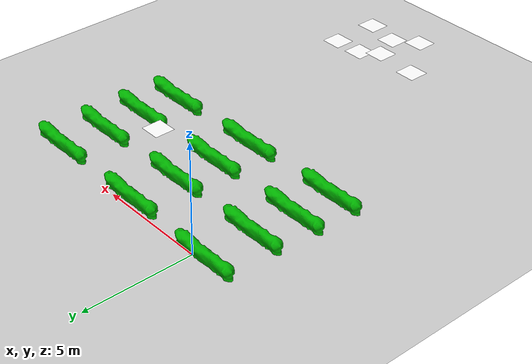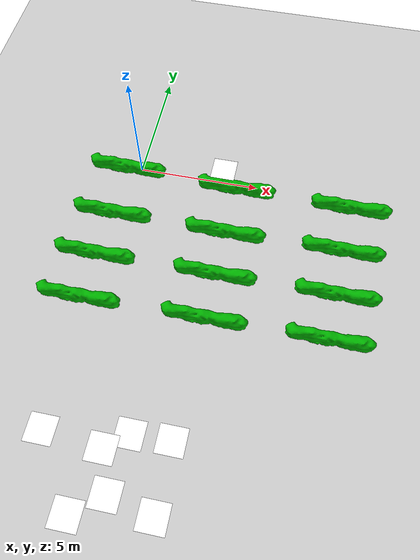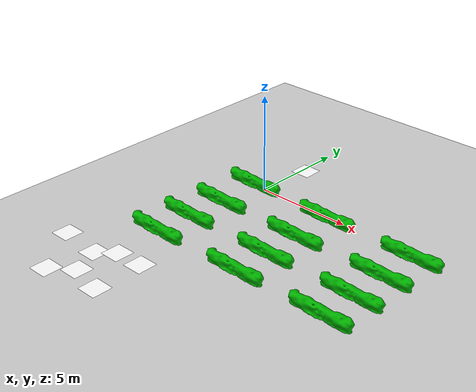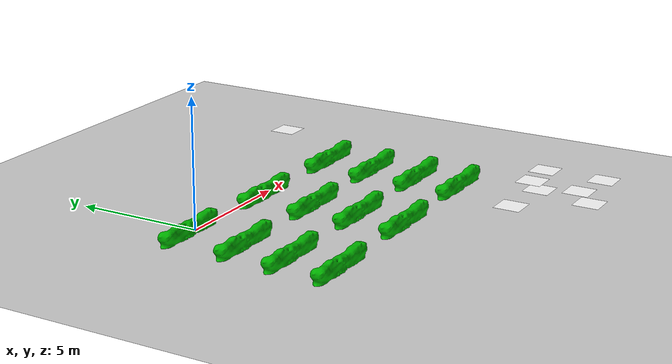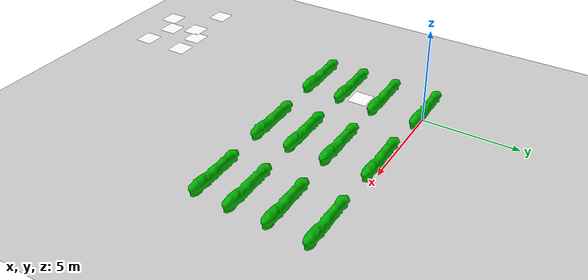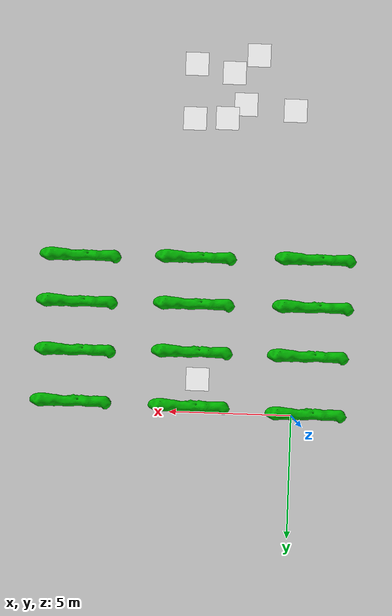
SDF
<sdf version="1.6">
 <world name="default">
  <light name="sun" type="directional">
   <pose>0 0 10 0 -0 0</pose>
   <diffuse>0.8 0.8 0.8 1</diffuse>
   <specular>0.2 0.2 0.2 1</specular>
   <attenuation>
    <range>1000</range>
    <constant>0.9</constant>
    <linear>0.01</linear>
    <quadratic>0.001</quadratic>
   </attenuation>
   <direction>-0.5 0.1 -0.9</direction>
  </light>
  <model name="earth_plane">
   <static>1</static>
   <link name="link">
    <collision name="collision">
     <geometry><plane><normal>0 0 1</normal><size>100 100</size></plane></geometry>
     <surface><friction><ode><mu>100</mu><mu2>50</mu2></ode></friction></surface>
    </collision>
    <visual name="visual">
     <cast_shadows>0</cast_shadows>
     <geometry><plane><normal>0 0 1</normal><size>100 100</size></plane></geometry>
     <material>
      <script>
       <uri>model://earth_plane/materials/scripts</uri>
       <uri>model://earth_plane/materials/textures</uri>
       <name>vrc/earth</name>
      </script>
     </material>
    </visual>
    <velocity_decay><linear>0</linear><angular>0</angular></velocity_decay>
   </link>
  </model>
  <physics name="default_physics" default="0" type="ode">
   <max_step_size>0.001</max_step_size>
   <real_time_factor>1</real_time_factor>
   <real_time_update_rate>1000</real_time_update_rate>
  </physics>
  <scene>
   <ambient>0.4 0.4 0.4 1</ambient>
   <background>0.7 0.7 0.7 1</background>
   <shadows>1</shadows>
   <sky><clouds><speed>12</speed></clouds></sky>
  </scene>
  <spherical_coordinates>
   <surface_model>EARTH_WGS84</surface_model>
   <latitude_deg>0</latitude_deg>
   <longitude_deg>0</longitude_deg>
   <elevation>0</elevation>
   <heading_deg>0</heading_deg>
  </spherical_coordinates>
  <gravity>0 0 -9.8</gravity>
  <magnetic_field>6e-06 2.3e-05 -4.2e-05</magnetic_field>
  <atmosphere type="adiabatic"/>
  <audio><device>default</device></audio>
  <model name="plot">
   <link name="link_6">
    <inertial>
     <mass>1</mass>
     <inertia>
      <ixx>0.166667</ixx>
      <ixy>0</ixy>
      <ixz>0</ixz>
      <iyy>0.166667</iyy>
      <iyz>0</iyz>
      <izz>0.166667</izz>
     </inertia>
    </inertial>
    <visual name="visual">
     <pose>0 0 0.35211 0 -0 0</pose>
     <geometry><mesh><uri>model://plot/meshes/plot.stl</uri><scale>1 1 1</scale></mesh></geometry>
     <material>
      <lighting>1</lighting>
      <script><uri>file://media/materials/scripts/gazebo.material</uri><name>Gazebo/Grey</name></script>
      <shader type="pixel"><normal_map>__default__</normal_map></shader>
      <ambient>0.2 0.9 0.1 1</ambient>
      <diffuse>0 0.7 0 1</diffuse>
      <specular>0.01 0.01 0.01 1</specular>
      <emissive>0 0 0 1</emissive>
     </material>
    </visual>
    <collision name="collision">
     <pose>0 0 0.306336 0 -0 0</pose>
     <geometry><mesh><uri>model://plot/meshes/plot.stl</uri><scale>1 1 1</scale></mesh></geometry>
     <surface>
      <friction>
       <ode><mu>1</mu><mu2>1</mu2><fdir1>0 0 0</fdir1><slip1>0</slip1><slip2>0</slip2></ode>
       <torsional>
        <coefficient>1</coefficient>
        <patch_radius>0</patch_radius>
        <surface_radius>0</surface_radius>
        <use_patch_radius>1</use_patch_radius>
        <ode><slip>0</slip></ode>
       </torsional>
      </friction>
      <bounce><restitution_coefficient>0</restitution_coefficient><threshold>1e+06</threshold></bounce>
      <contact>
       <collide_without_contact>0</collide_without_contact>
       <collide_without_contact_bitmask>1</collide_without_contact_bitmask>
       <collide_bitmask>1</collide_bitmask>
       <ode>
        <soft_cfm>0</soft_cfm>
        <soft_erp>0.2</soft_erp>
        <kp>1e+13</kp>
        <kd>1</kd>
        <max_vel>0.01</max_vel>
        <min_depth>0</min_depth>
       </ode>
       <bullet>
        <split_impulse>1</split_impulse>
        <split_impulse_penetration_threshold>-0.01</split_impulse_penetration_threshold>
        <soft_cfm>0</soft_cfm>
        <soft_erp>0.2</soft_erp>
        <kp>1e+13</kp>
        <kd>1</kd>
       </bullet>
      </contact>
     </surface>
    </collision>
   </link>
   <static>1</static>
   <pose>-0.702663 -4.46163 0 0 -0 0</pose>
  </model>
  <model name="plot_0">
   <link name="link_6">
    <inertial>
     <mass>1</mass>
     <inertia>
      <ixx>0.166667</ixx>
      <ixy>0</ixy>
      <ixz>0</ixz>
      <iyy>0.166667</iyy>
      <iyz>0</iyz>
      <izz>0.166667</izz>
     </inertia>
    </inertial>
    <visual name="visual">
     <pose>0 0 0.35211 0 -0 0</pose>
     <geometry><mesh><uri>model://plot/meshes/plot.stl</uri><scale>1 1 1</scale></mesh></geometry>
     <material>
      <lighting>1</lighting>
      <script><uri>file://media/materials/scripts/gazebo.material</uri><name>Gazebo/Grey</name></script>
      <shader type="pixel"><normal_map>__default__</normal_map></shader>
      <ambient>0.2 0.9 0.1 1</ambient>
      <diffuse>0 0.7 0 1</diffuse>
      <specular>0.01 0.01 0.01 1</specular>
      <emissive>0 0 0 1</emissive>
     </material>
    </visual>
    <collision name="collision">
     <pose>0 0 0.306336 0 -0 0</pose>
     <geometry><mesh><uri>model://plot/meshes/plot.stl</uri><scale>1 1 1</scale></mesh></geometry>
     <surface>
      <friction>
       <ode><mu>1</mu><mu2>1</mu2><fdir1>0 0 0</fdir1><slip1>0</slip1><slip2>0</slip2></ode>
       <torsional>
        <coefficient>1</coefficient>
        <patch_radius>0</patch_radius>
        <surface_radius>0</surface_radius>
        <use_patch_radius>1</use_patch_radius>
        <ode><slip>0</slip></ode>
       </torsional>
      </friction>
      <bounce><restitution_coefficient>0</restitution_coefficient><threshold>1e+06</threshold></bounce>
      <contact>
       <collide_without_contact>0</collide_without_contact>
       <collide_without_contact_bitmask>1</collide_without_contact_bitmask>
       <collide_bitmask>1</collide_bitmask>
       <ode>
        <soft_cfm>0</soft_cfm>
        <soft_erp>0.2</soft_erp>
        <kp>1e+13</kp>
        <kd>1</kd>
        <max_vel>0.01</max_vel>
        <min_depth>0</min_depth>
       </ode>
       <bullet>
        <split_impulse>1</split_impulse>
        <split_impulse_penetration_threshold>-0.01</split_impulse_penetration_threshold>
        <soft_cfm>0</soft_cfm>
        <soft_erp>0.2</soft_erp>
        <kp>1e+13</kp>
        <kd>1</kd>
       </bullet>
      </contact>
     </surface>
    </collision>
   </link>
   <static>1</static>
   <pose>-0.739791 -6.4081 0 0 -0 0</pose>
  </model>
  <model name="plot_1">
   <link name="link_6">
    <inertial>
     <mass>1</mass>
     <inertia>
      <ixx>0.166667</ixx>
      <ixy>0</ixy>
      <ixz>0</ixz>
      <iyy>0.166667</iyy>
      <iyz>0</iyz>
      <izz>0.166667</izz>
     </inertia>
    </inertial>
    <visual name="visual">
     <pose>0 0 0.35211 0 -0 0</pose>
     <geometry><mesh><uri>model://plot/meshes/plot.stl</uri><scale>1 1 1</scale></mesh></geometry>
     <material>
      <lighting>1</lighting>
      <script><uri>file://media/materials/scripts/gazebo.material</uri><name>Gazebo/Grey</name></script>
      <shader type="pixel"><normal_map>__default__</normal_map></shader>
      <ambient>0.2 0.9 0.1 1</ambient>
      <diffuse>0 0.7 0 1</diffuse>
      <specular>0.01 0.01 0.01 1</specular>
      <emissive>0 0 0 1</emissive>
     </material>
    </visual>
    <collision name="collision">
     <pose>0 0 0.306336 0 -0 0</pose>
     <geometry><mesh><uri>model://plot/meshes/plot.stl</uri><scale>1 1 1</scale></mesh></geometry>
     <surface>
      <friction>
       <ode><mu>1</mu><mu2>1</mu2><fdir1>0 0 0</fdir1><slip1>0</slip1><slip2>0</slip2></ode>
       <torsional>
        <coefficient>1</coefficient>
        <patch_radius>0</patch_radius>
        <surface_radius>0</surface_radius>
        <use_patch_radius>1</use_patch_radius>
        <ode><slip>0</slip></ode>
       </torsional>
      </friction>
      <bounce><restitution_coefficient>0</restitution_coefficient><threshold>1e+06</threshold></bounce>
      <contact>
       <collide_without_contact>0</collide_without_contact>
       <collide_without_contact_bitmask>1</collide_without_contact_bitmask>
       <collide_bitmask>1</collide_bitmask>
       <ode>
        <soft_cfm>0</soft_cfm>
        <soft_erp>0.2</soft_erp>
        <kp>1e+13</kp>
        <kd>1</kd>
        <max_vel>0.01</max_vel>
        <min_depth>0</min_depth>
       </ode>
       <bullet>
        <split_impulse>1</split_impulse>
        <split_impulse_penetration_threshold>-0.01</split_impulse_penetration_threshold>
        <soft_cfm>0</soft_cfm>
        <soft_erp>0.2</soft_erp>
        <kp>1e+13</kp>
        <kd>1</kd>
       </bullet>
      </contact>
     </surface>
    </collision>
   </link>
   <static>1</static>
   <pose>-0.567819 -2.45948 0 0 -0 0</pose>
  </model>
  <model name="plot_2">
   <link name="link_6">
    <inertial>
     <mass>1</mass>
     <inertia>
      <ixx>0.166667</ixx>
      <ixy>0</ixy>
      <ixz>0</ixz>
      <iyy>0.166667</iyy>
      <iyz>0</iyz>
      <izz>0.166667</izz>
     </inertia>
    </inertial>
    <visual name="visual">
     <pose>0 0 0.35211 0 -0 0</pose>
     <geometry><mesh><uri>model://plot/meshes/plot.stl</uri><scale>1 1 1</scale></mesh></geometry>
     <material>
      <lighting>1</lighting>
      <script><uri>file://media/materials/scripts/gazebo.material</uri><name>Gazebo/Grey</name></script>
      <shader type="pixel"><normal_map>__default__</normal_map></shader>
      <ambient>0.2 0.9 0.1 1</ambient>
      <diffuse>0 0.7 0 1</diffuse>
      <specular>0.01 0.01 0.01 1</specular>
      <emissive>0 0 0 1</emissive>
     </material>
    </visual>
    <collision name="collision">
     <pose>0 0 0.306336 0 -0 0</pose>
     <geometry><mesh><uri>model://plot/meshes/plot.stl</uri><scale>1 1 1</scale></mesh></geometry>
     <surface>
      <friction>
       <ode><mu>1</mu><mu2>1</mu2><fdir1>0 0 0</fdir1><slip1>0</slip1><slip2>0</slip2></ode>
       <torsional>
        <coefficient>1</coefficient>
        <patch_radius>0</patch_radius>
        <surface_radius>0</surface_radius>
        <use_patch_radius>1</use_patch_radius>
        <ode><slip>0</slip></ode>
       </torsional>
      </friction>
      <bounce><restitution_coefficient>0</restitution_coefficient><threshold>1e+06</threshold></bounce>
      <contact>
       <collide_without_contact>0</collide_without_contact>
       <collide_without_contact_bitmask>1</collide_without_contact_bitmask>
       <collide_bitmask>1</collide_bitmask>
       <ode>
        <soft_cfm>0</soft_cfm>
        <soft_erp>0.2</soft_erp>
        <kp>1e+13</kp>
        <kd>1</kd>
        <max_vel>0.01</max_vel>
        <min_depth>0</min_depth>
       </ode>
       <bullet>
        <split_impulse>1</split_impulse>
        <split_impulse_penetration_threshold>-0.01</split_impulse_penetration_threshold>
        <soft_cfm>0</soft_cfm>
        <soft_erp>0.2</soft_erp>
        <kp>1e+13</kp>
        <kd>1</kd>
       </bullet>
      </contact>
     </surface>
    </collision>
   </link>
   <static>1</static>
   <pose>4.14498 -2.48936 0 0 -0 0</pose>
  </model>
  <model name="plot_3">
   <link name="link_6">
    <inertial>
     <mass>1</mass>
     <inertia>
      <ixx>0.166667</ixx>
      <ixy>0</ixy>
      <ixz>0</ixz>
      <iyy>0.166667</iyy>
      <iyz>0</iyz>
      <izz>0.166667</izz>
     </inertia>
    </inertial>
    <visual name="visual">
     <pose>0 0 0.35211 0 -0 0</pose>
     <geometry><mesh><uri>model://plot/meshes/plot.stl</uri><scale>1 1 1</scale></mesh></geometry>
     <material>
      <lighting>1</lighting>
      <script><uri>file://media/materials/scripts/gazebo.material</uri><name>Gazebo/Grey</name></script>
      <shader type="pixel"><normal_map>__default__</normal_map></shader>
      <ambient>0.2 0.9 0.1 1</ambient>
      <diffuse>0 0.7 0 1</diffuse>
      <specular>0.01 0.01 0.01 1</specular>
      <emissive>0 0 0 1</emissive>
     </material>
    </visual>
    <collision name="collision">
     <pose>0 0 0.306336 0 -0 0</pose>
     <geometry><mesh><uri>model://plot/meshes/plot.stl</uri><scale>1 1 1</scale></mesh></geometry>
     <surface>
      <friction>
       <ode><mu>1</mu><mu2>1</mu2><fdir1>0 0 0</fdir1><slip1>0</slip1><slip2>0</slip2></ode>
       <torsional>
        <coefficient>1</coefficient>
        <patch_radius>0</patch_radius>
        <surface_radius>0</surface_radius>
        <use_patch_radius>1</use_patch_radius>
        <ode><slip>0</slip></ode>
       </torsional>
      </friction>
      <bounce><restitution_coefficient>0</restitution_coefficient><threshold>1e+06</threshold></bounce>
      <contact>
       <collide_without_contact>0</collide_without_contact>
       <collide_without_contact_bitmask>1</collide_without_contact_bitmask>
       <collide_bitmask>1</collide_bitmask>
       <ode>
        <soft_cfm>0</soft_cfm>
        <soft_erp>0.2</soft_erp>
        <kp>1e+13</kp>
        <kd>1</kd>
        <max_vel>0.01</max_vel>
        <min_depth>0</min_depth>
       </ode>
       <bullet>
        <split_impulse>1</split_impulse>
        <split_impulse_penetration_threshold>-0.01</split_impulse_penetration_threshold>
        <soft_cfm>0</soft_cfm>
        <soft_erp>0.2</soft_erp>
        <kp>1e+13</kp>
        <kd>1</kd>
       </bullet>
      </contact>
     </surface>
    </collision>
   </link>
   <static>1</static>
   <pose>4.12976 -4.43665 0 0 -0 0</pose>
  </model>
  <model name="plot_4">
   <link name="link_6">
    <inertial>
     <mass>1</mass>
     <inertia>
      <ixx>0.166667</ixx>
      <ixy>0</ixy>
      <ixz>0</ixz>
      <iyy>0.166667</iyy>
      <iyz>0</iyz>
      <izz>0.166667</izz>
     </inertia>
    </inertial>
    <visual name="visual">
     <pose>0 0 0.35211 0 -0 0</pose>
     <geometry><mesh><uri>model://plot/meshes/plot.stl</uri><scale>1 1 1</scale></mesh></geometry>
     <material>
      <lighting>1</lighting>
      <script><uri>file://media/materials/scripts/gazebo.material</uri><name>Gazebo/Grey</name></script>
      <shader type="pixel"><normal_map>__default__</normal_map></shader>
      <ambient>0.2 0.9 0.1 1</ambient>
      <diffuse>0 0.7 0 1</diffuse>
      <specular>0.01 0.01 0.01 1</specular>
      <emissive>0 0 0 1</emissive>
     </material>
    </visual>
    <collision name="collision">
     <pose>0 0 0.306336 0 -0 0</pose>
     <geometry><mesh><uri>model://plot/meshes/plot.stl</uri><scale>1 1 1</scale></mesh></geometry>
     <surface>
      <friction>
       <ode><mu>1</mu><mu2>1</mu2><fdir1>0 0 0</fdir1><slip1>0</slip1><slip2>0</slip2></ode>
       <torsional>
        <coefficient>1</coefficient>
        <patch_radius>0</patch_radius>
        <surface_radius>0</surface_radius>
        <use_patch_radius>1</use_patch_radius>
        <ode><slip>0</slip></ode>
       </torsional>
      </friction>
      <bounce><restitution_coefficient>0</restitution_coefficient><threshold>1e+06</threshold></bounce>
      <contact>
       <collide_without_contact>0</collide_without_contact>
       <collide_without_contact_bitmask>1</collide_without_contact_bitmask>
       <collide_bitmask>1</collide_bitmask>
       <ode>
        <soft_cfm>0</soft_cfm>
        <soft_erp>0.2</soft_erp>
        <kp>1e+13</kp>
        <kd>1</kd>
        <max_vel>0.01</max_vel>
        <min_depth>0</min_depth>
       </ode>
       <bullet>
        <split_impulse>1</split_impulse>
        <split_impulse_penetration_threshold>-0.01</split_impulse_penetration_threshold>
        <soft_cfm>0</soft_cfm>
        <soft_erp>0.2</soft_erp>
        <kp>1e+13</kp>
        <kd>1</kd>
       </bullet>
      </contact>
     </surface>
    </collision>
   </link>
   <static>1</static>
   <pose>4.11358 -6.33342 0 0 -0 0</pose>
  </model>
  <model name="plot_5">
   <link name="link_6">
    <inertial>
     <mass>1</mass>
     <inertia>
      <ixx>0.166667</ixx>
      <ixy>0</ixy>
      <ixz>0</ixz>
      <iyy>0.166667</iyy>
      <iyz>0</iyz>
      <izz>0.166667</izz>
     </inertia>
    </inertial>
    <visual name="visual">
     <pose>0 0 0.35211 0 -0 0</pose>
     <geometry><mesh><uri>model://plot/meshes/plot.stl</uri><scale>1 1 1</scale></mesh></geometry>
     <material>
      <lighting>1</lighting>
      <script><uri>file://media/materials/scripts/gazebo.material</uri><name>Gazebo/Grey</name></script>
      <shader type="pixel"><normal_map>__default__</normal_map></shader>
      <ambient>0.2 0.9 0.1 1</ambient>
      <diffuse>0 0.7 0 1</diffuse>
      <specular>0.01 0.01 0.01 1</specular>
      <emissive>0 0 0 1</emissive>
     </material>
    </visual>
    <collision name="collision">
     <pose>0 0 0.306336 0 -0 0</pose>
     <geometry><mesh><uri>model://plot/meshes/plot.stl</uri><scale>1 1 1</scale></mesh></geometry>
     <surface>
      <friction>
       <ode><mu>1</mu><mu2>1</mu2><fdir1>0 0 0</fdir1><slip1>0</slip1><slip2>0</slip2></ode>
       <torsional>
        <coefficient>1</coefficient>
        <patch_radius>0</patch_radius>
        <surface_radius>0</surface_radius>
        <use_patch_radius>1</use_patch_radius>
        <ode><slip>0</slip></ode>
       </torsional>
      </friction>
      <bounce><restitution_coefficient>0</restitution_coefficient><threshold>1e+06</threshold></bounce>
      <contact>
       <collide_without_contact>0</collide_without_contact>
       <collide_without_contact_bitmask>1</collide_without_contact_bitmask>
       <collide_bitmask>1</collide_bitmask>
       <ode>
        <soft_cfm>0</soft_cfm>
        <soft_erp>0.2</soft_erp>
        <kp>1e+13</kp>
        <kd>1</kd>
        <max_vel>0.01</max_vel>
        <min_depth>0</min_depth>
       </ode>
       <bullet>
        <split_impulse>1</split_impulse>
        <split_impulse_penetration_threshold>-0.01</split_impulse_penetration_threshold>
        <soft_cfm>0</soft_cfm>
        <soft_erp>0.2</soft_erp>
        <kp>1e+13</kp>
        <kd>1</kd>
       </bullet>
      </contact>
     </surface>
    </collision>
   </link>
   <static>1</static>
   <pose>8.8859 -2.40892 0 0 -0 0</pose>
  </model>
  <model name="plot_6">
   <link name="link_6">
    <inertial>
     <mass>1</mass>
     <inertia>
      <ixx>0.166667</ixx>
      <ixy>0</ixy>
      <ixz>0</ixz>
      <iyy>0.166667</iyy>
      <iyz>0</iyz>
      <izz>0.166667</izz>
     </inertia>
    </inertial>
    <visual name="visual">
     <pose>0 0 0.35211 0 -0 0</pose>
     <geometry><mesh><uri>model://plot/meshes/plot.stl</uri><scale>1 1 1</scale></mesh></geometry>
     <material>
      <lighting>1</lighting>
      <script><uri>file://media/materials/scripts/gazebo.material</uri><name>Gazebo/Grey</name></script>
      <shader type="pixel"><normal_map>__default__</normal_map></shader>
      <ambient>0.2 0.9 0.1 1</ambient>
      <diffuse>0 0.7 0 1</diffuse>
      <specular>0.01 0.01 0.01 1</specular>
      <emissive>0 0 0 1</emissive>
     </material>
    </visual>
    <collision name="collision">
     <pose>0 0 0.306336 0 -0 0</pose>
     <geometry><mesh><uri>model://plot/meshes/plot.stl</uri><scale>1 1 1</scale></mesh></geometry>
     <surface>
      <friction>
       <ode><mu>1</mu><mu2>1</mu2><fdir1>0 0 0</fdir1><slip1>0</slip1><slip2>0</slip2></ode>
       <torsional>
        <coefficient>1</coefficient>
        <patch_radius>0</patch_radius>
        <surface_radius>0</surface_radius>
        <use_patch_radius>1</use_patch_radius>
        <ode><slip>0</slip></ode>
       </torsional>
      </friction>
      <bounce><restitution_coefficient>0</restitution_coefficient><threshold>1e+06</threshold></bounce>
      <contact>
       <collide_without_contact>0</collide_without_contact>
       <collide_without_contact_bitmask>1</collide_without_contact_bitmask>
       <collide_bitmask>1</collide_bitmask>
       <ode>
        <soft_cfm>0</soft_cfm>
        <soft_erp>0.2</soft_erp>
        <kp>1e+13</kp>
        <kd>1</kd>
        <max_vel>0.01</max_vel>
        <min_depth>0</min_depth>
       </ode>
       <bullet>
        <split_impulse>1</split_impulse>
        <split_impulse_penetration_threshold>-0.01</split_impulse_penetration_threshold>
        <soft_cfm>0</soft_cfm>
        <soft_erp>0.2</soft_erp>
        <kp>1e+13</kp>
        <kd>1</kd>
       </bullet>
      </contact>
     </surface>
    </collision>
   </link>
   <static>1</static>
   <pose>8.87801 -4.38607 0 0 -0 0</pose>
  </model>
  <model name="plot_7">
   <link name="link_6">
    <inertial>
     <mass>1</mass>
     <inertia>
      <ixx>0.166667</ixx>
      <ixy>0</ixy>
      <ixz>0</ixz>
      <iyy>0.166667</iyy>
      <iyz>0</iyz>
      <izz>0.166667</izz>
     </inertia>
    </inertial>
    <visual name="visual">
     <pose>0 0 0.35211 0 -0 0</pose>
     <geometry><mesh><uri>model://plot/meshes/plot.stl</uri><scale>1 1 1</scale></mesh></geometry>
     <material>
      <lighting>1</lighting>
      <script><uri>file://media/materials/scripts/gazebo.material</uri><name>Gazebo/Grey</name></script>
      <shader type="pixel"><normal_map>__default__</normal_map></shader>
      <ambient>0.2 0.9 0.1 1</ambient>
      <diffuse>0 0.7 0 1</diffuse>
      <specular>0.01 0.01 0.01 1</specular>
      <emissive>0 0 0 1</emissive>
     </material>
    </visual>
    <collision name="collision">
     <pose>0 0 0.306336 0 -0 0</pose>
     <geometry><mesh><uri>model://plot/meshes/plot.stl</uri><scale>1 1 1</scale></mesh></geometry>
     <surface>
      <friction>
       <ode><mu>1</mu><mu2>1</mu2><fdir1>0 0 0</fdir1><slip1>0</slip1><slip2>0</slip2></ode>
       <torsional>
        <coefficient>1</coefficient>
        <patch_radius>0</patch_radius>
        <surface_radius>0</surface_radius>
        <use_patch_radius>1</use_patch_radius>
        <ode><slip>0</slip></ode>
       </torsional>
      </friction>
      <bounce><restitution_coefficient>0</restitution_coefficient><threshold>1e+06</threshold></bounce>
      <contact>
       <collide_without_contact>0</collide_without_contact>
       <collide_without_contact_bitmask>1</collide_without_contact_bitmask>
       <collide_bitmask>1</collide_bitmask>
       <ode>
        <soft_cfm>0</soft_cfm>
        <soft_erp>0.2</soft_erp>
        <kp>1e+13</kp>
        <kd>1</kd>
        <max_vel>0.01</max_vel>
        <min_depth>0</min_depth>
       </ode>
       <bullet>
        <split_impulse>1</split_impulse>
        <split_impulse_penetration_threshold>-0.01</split_impulse_penetration_threshold>
        <soft_cfm>0</soft_cfm>
        <soft_erp>0.2</soft_erp>
        <kp>1e+13</kp>
        <kd>1</kd>
       </bullet>
      </contact>
     </surface>
    </collision>
   </link>
   <static>1</static>
   <pose>8.79422 -6.2622 0 0 -0 0</pose>
  </model>
  <model name="plot_8">
   <link name="link_6">
    <inertial>
     <mass>1</mass>
     <inertia>
      <ixx>0.166667</ixx>
      <ixy>0</ixy>
      <ixz>0</ixz>
      <iyy>0.166667</iyy>
      <iyz>0</iyz>
      <izz>0.166667</izz>
     </inertia>
    </inertial>
    <visual name="visual">
     <pose>0 0 0.35211 0 -0 0</pose>
     <geometry><mesh><uri>model://plot/meshes/plot.stl</uri><scale>1 1 1</scale></mesh></geometry>
     <material>
      <lighting>1</lighting>
      <script><uri>file://media/materials/scripts/gazebo.material</uri><name>Gazebo/Grey</name></script>
      <shader type="pixel"><normal_map>__default__</normal_map></shader>
      <ambient>0.2 0.9 0.1 1</ambient>
      <diffuse>0 0.7 0 1</diffuse>
      <specular>0.01 0.01 0.01 1</specular>
      <emissive>0 0 0 1</emissive>
     </material>
    </visual>
    <collision name="collision">
     <pose>0 0 0.306336 0 -0 0</pose>
     <geometry><mesh><uri>model://plot/meshes/plot.stl</uri><scale>1 1 1</scale></mesh></geometry>
     <surface>
      <friction>
       <ode><mu>1</mu><mu2>1</mu2><fdir1>0 0 0</fdir1><slip1>0</slip1><slip2>0</slip2></ode>
       <torsional>
        <coefficient>1</coefficient>
        <patch_radius>0</patch_radius>
        <surface_radius>0</surface_radius>
        <use_patch_radius>1</use_patch_radius>
        <ode><slip>0</slip></ode>
       </torsional>
      </friction>
      <bounce><restitution_coefficient>0</restitution_coefficient><threshold>1e+06</threshold></bounce>
      <contact>
       <collide_without_contact>0</collide_without_contact>
       <collide_without_contact_bitmask>1</collide_without_contact_bitmask>
       <collide_bitmask>1</collide_bitmask>
       <ode>
        <soft_cfm>0</soft_cfm>
        <soft_erp>0.2</soft_erp>
        <kp>1e+13</kp>
        <kd>1</kd>
        <max_vel>0.01</max_vel>
        <min_depth>0</min_depth>
       </ode>
       <bullet>
        <split_impulse>1</split_impulse>
        <split_impulse_penetration_threshold>-0.01</split_impulse_penetration_threshold>
        <soft_cfm>0</soft_cfm>
        <soft_erp>0.2</soft_erp>
        <kp>1e+13</kp>
        <kd>1</kd>
       </bullet>
      </contact>
     </surface>
    </collision>
   </link>
   <static>1</static>
   <pose>8.99932 -0.328776 0 0 -0 0</pose>
  </model>
  <model name="plot_9">
   <link name="link_6">
    <inertial>
     <mass>1</mass>
     <inertia>
      <ixx>0.166667</ixx>
      <ixy>0</ixy>
      <ixz>0</ixz>
      <iyy>0.166667</iyy>
      <iyz>0</iyz>
      <izz>0.166667</izz>
     </inertia>
    </inertial>
    <visual name="visual">
     <pose>0 0 0.35211 0 -0 0</pose>
     <geometry><mesh><uri>model://plot/meshes/plot.stl</uri><scale>1 1 1</scale></mesh></geometry>
     <material>
      <lighting>1</lighting>
      <script><uri>file://media/materials/scripts/gazebo.material</uri><name>Gazebo/Grey</name></script>
      <shader type="pixel"><normal_map>__default__</normal_map></shader>
      <ambient>0.2 0.9 0.1 1</ambient>
      <diffuse>0 0.7 0 1</diffuse>
      <specular>0.01 0.01 0.01 1</specular>
      <emissive>0 0 0 1</emissive>
     </material>
    </visual>
    <collision name="collision">
     <pose>0 0 0.306336 0 -0 0</pose>
     <geometry><mesh><uri>model://plot/meshes/plot.stl</uri><scale>1 1 1</scale></mesh></geometry>
     <surface>
      <friction>
       <ode><mu>1</mu><mu2>1</mu2><fdir1>0 0 0</fdir1><slip1>0</slip1><slip2>0</slip2></ode>
       <torsional>
        <coefficient>1</coefficient>
        <patch_radius>0</patch_radius>
        <surface_radius>0</surface_radius>
        <use_patch_radius>1</use_patch_radius>
        <ode><slip>0</slip></ode>
       </torsional>
      </friction>
      <bounce><restitution_coefficient>0</restitution_coefficient><threshold>1e+06</threshold></bounce>
      <contact>
       <collide_without_contact>0</collide_without_contact>
       <collide_without_contact_bitmask>1</collide_without_contact_bitmask>
       <collide_bitmask>1</collide_bitmask>
       <ode>
        <soft_cfm>0</soft_cfm>
        <soft_erp>0.2</soft_erp>
        <kp>1e+13</kp>
        <kd>1</kd>
        <max_vel>0.01</max_vel>
        <min_depth>0</min_depth>
       </ode>
       <bullet>
        <split_impulse>1</split_impulse>
        <split_impulse_penetration_threshold>-0.01</split_impulse_penetration_threshold>
        <soft_cfm>0</soft_cfm>
        <soft_erp>0.2</soft_erp>
        <kp>1e+13</kp>
        <kd>1</kd>
       </bullet>
      </contact>
     </surface>
    </collision>
   </link>
   <static>1</static>
   <pose>4.19467 -0.277248 0 0 -0 0</pose>
  </model>
  <model name="plot_10">
   <link name="link_6">
    <inertial>
     <mass>1</mass>
     <inertia>
      <ixx>0.166667</ixx>
      <ixy>0</ixy>
      <ixz>0</ixz>
      <iyy>0.166667</iyy>
      <iyz>0</iyz>
      <izz>0.166667</izz>
     </inertia>
    </inertial>
    <visual name="visual">
     <pose>0 0 0.35211 0 -0 0</pose>
     <geometry><mesh><uri>model://plot/meshes/plot.stl</uri><scale>1 1 1</scale></mesh></geometry>
     <material>
      <lighting>1</lighting>
      <script><uri>file://media/materials/scripts/gazebo.material</uri><name>Gazebo/Grey</name></script>
      <shader type="pixel"><normal_map>__default__</normal_map></shader>
      <ambient>0.2 0.9 0.1 1</ambient>
      <diffuse>0 0.7 0 1</diffuse>
      <specular>0.01 0.01 0.01 1</specular>
      <emissive>0 0 0 1</emissive>
     </material>
    </visual>
    <collision name="collision">
     <pose>0 0 0.306336 0 -0 0</pose>
     <geometry><mesh><uri>model://plot/meshes/plot.stl</uri><scale>1 1 1</scale></mesh></geometry>
     <surface>
      <friction>
       <ode><mu>1</mu><mu2>1</mu2><fdir1>0 0 0</fdir1><slip1>0</slip1><slip2>0</slip2></ode>
       <torsional>
        <coefficient>1</coefficient>
        <patch_radius>0</patch_radius>
        <surface_radius>0</surface_radius>
        <use_patch_radius>1</use_patch_radius>
        <ode><slip>0</slip></ode>
       </torsional>
      </friction>
      <bounce><restitution_coefficient>0</restitution_coefficient><threshold>1e+06</threshold></bounce>
      <contact>
       <collide_without_contact>0</collide_without_contact>
       <collide_without_contact_bitmask>1</collide_without_contact_bitmask>
       <collide_bitmask>1</collide_bitmask>
       <ode>
        <soft_cfm>0</soft_cfm>
        <soft_erp>0.2</soft_erp>
        <kp>1e+13</kp>
        <kd>1</kd>
        <max_vel>0.01</max_vel>
        <min_depth>0</min_depth>
       </ode>
       <bullet>
        <split_impulse>1</split_impulse>
        <split_impulse_penetration_threshold>-0.01</split_impulse_penetration_threshold>
        <soft_cfm>0</soft_cfm>
        <soft_erp>0.2</soft_erp>
        <kp>1e+13</kp>
        <kd>1</kd>
       </bullet>
      </contact>
     </surface>
    </collision>
   </link>
   <static>1</static>
   <pose>-0.554227 -0.107717 0 0 -0 0</pose>
  </model>
  <model name="aruco_visual_marker_0">
   <link name="marker">
    <visual name="visual">
     <geometry><box><size>0.889 0.889 1e-05</size></box></geometry>
     <material>
      <script>
       <uri>model://aruco_visual_marker_0/materials/scripts</uri>
       <uri>model://aruco_visual_marker_0/materials/textures</uri>
       <name>ArucoVisualMarker0/Marker</name>
      </script>
      <ambient>1 1 1 1</ambient>
      <diffuse>1 1 1 1</diffuse>
      <specular>0 0 0 1</specular>
      <emissive>1 1 1 0</emissive>
      <shader type="vertex"><normal_map>__default__</normal_map></shader>
     </material>
    </visual>
    <collision name="collision"><geometry><box><size>0.889 0.889 1e-05</size></box></geometry></collision>
   </link>
   <joint name="marker_JOINT_marker_pad" type="revolute">
    <parent>marker</parent>
    <child>marker_pad</child>
    <axis>
     <xyz>0 0 1</xyz>
     <limit><upper>0</upper><lower>0</lower></limit>
     <use_parent_model_frame>0</use_parent_model_frame>
     <dynamics><spring_reference>0</spring_reference><spring_stiffness>0</spring_stiffness></dynamics>
    </axis>
   </joint>
   <static>1</static>
   <pose>3.90197 -1.53419 3.0 0 -0 0</pose>
  </model>
  <model name="aruco_visual_marker_2">
   <link name="marker">
    <visual name="visual">
     <geometry><box><size>0.889 0.889 1e-05</size></box></geometry>
     <material>
      <script>
       <uri>model://aruco_visual_marker_2/materials/scripts</uri>
       <uri>model://aruco_visual_marker_2/materials/textures</uri>
       <name>ArucoVisualMarker2/Marker</name>
      </script>
      <ambient>1 1 1 1</ambient>
      <diffuse>1 1 1 1</diffuse>
      <specular>0 0 0 1</specular>
      <emissive>1 1 1 0</emissive>
      <shader type="vertex"><normal_map>__default__</normal_map></shader>
     </material>
    </visual>
    <collision name="collision"><geometry><box><size>0.889 0.889 1e-05</size></box></geometry></collision>
   </link>
   <joint name="marker_JOINT_marker_pad" type="revolute">
    <parent>marker</parent>
    <child>marker_pad</child>
    <axis>
     <xyz>0 0 1</xyz>
     <limit><upper>0</upper><lower>0</lower></limit>
     <use_parent_model_frame>0</use_parent_model_frame>
     <dynamics><spring_reference>0</spring_reference><spring_stiffness>0</spring_stiffness></dynamics>
    </axis>
   </joint>
   <static>1</static>
   <pose>4.34082 -13.6733 3 0 -0 0</pose>
  </model>
  <model name="aruco_visual_marker_1">
   <link name="marker">
    <visual name="visual">
     <geometry><box><size>0.889 0.889 1e-05</size></box></geometry>
     <material>
      <script>
       <uri>model://aruco_visual_marker_1/materials/scripts</uri>
       <uri>model://aruco_visual_marker_1/materials/textures</uri>
       <name>ArucoVisualMarker1/Marker</name>
      </script>
      <ambient>1 1 1 1</ambient>
      <diffuse>1 1 1 1</diffuse>
      <specular>0 0 0 1</specular>
      <emissive>1 1 1 0</emissive>
      <shader type="vertex"><normal_map>__default__</normal_map></shader>
     </material>
    </visual>
    <collision name="collision"><geometry><box><size>0.889 0.889 1e-05</size></box></geometry></collision>
   </link>
   <joint name="marker_JOINT_marker_pad" type="revolute">
    <parent>marker</parent>
    <child>marker_pad</child>
    <axis>
     <xyz>0 0 1</xyz>
     <limit><upper>0</upper><lower>0</lower></limit>
     <use_parent_model_frame>0</use_parent_model_frame>
     <dynamics><spring_reference>0</spring_reference><spring_stiffness>0</spring_stiffness></dynamics>
    </axis>
   </joint>
   <static>1</static>
   <pose>4.34891 -11.5697 3 0 -0 0</pose>
  </model>
  <model name="aruco_visual_marker_3">
   <link name="marker">
    <visual name="visual">
     <geometry><box><size>0.889 0.889 1e-05</size></box></geometry>
     <material>
      <script>
       <uri>model://aruco_visual_marker_3/materials/scripts</uri>
       <uri>model://aruco_visual_marker_3/materials/textures</uri>
       <name>ArucoVisualMarker3/Marker</name>
      </script>
      <ambient>1 1 1 1</ambient>
      <diffuse>1 1 1 1</diffuse>
      <specular>0 0 0 1</specular>
      <emissive>1 1 1 0</emissive>
      <shader type="vertex"><normal_map>__default__</normal_map></shader>
     </material>
    </visual>
    <collision name="collision"><geometry><box><size>0.889 0.889 1e-05</size></box></geometry></collision>
   </link>
   <joint name="marker_JOINT_marker_pad" type="revolute">
    <parent>marker</parent>
    <child>marker_pad</child>
    <axis>
     <xyz>0 0 1</xyz>
     <limit><upper>0</upper><lower>0</lower></limit>
     <use_parent_model_frame>0</use_parent_model_frame>
     <dynamics><spring_reference>0</spring_reference><spring_stiffness>0</spring_stiffness></dynamics>
    </axis>
   </joint>
   <static>1</static>
   <pose>3.09608 -11.6228 3 0 -0 0</pose>
  </model>
  <model name="aruco_visual_marker_4">
   <link name="marker">
    <visual name="visual">
     <geometry><box><size>0.889 0.889 1e-05</size></box></geometry>
     <material>
      <script>
       <uri>model://aruco_visual_marker_4/materials/scripts</uri>
       <uri>model://aruco_visual_marker_4/materials/textures</uri>
       <name>ArucoVisualMarker4/Marker</name>
      </script>
      <ambient>1 1 1 1</ambient>
      <diffuse>1 1 1 1</diffuse>
      <specular>0 0 0 1</specular>
      <emissive>1 1 1 0</emissive>
      <shader type="vertex"><normal_map>__default__</normal_map></shader>
     </material>
    </visual>
    <collision name="collision"><geometry><box><size>0.889 0.889 1e-05</size></box></geometry></collision>
   </link>
   <joint name="marker_JOINT_marker_pad" type="revolute">
    <parent>marker</parent>
    <child>marker_pad</child>
    <axis>
     <xyz>0 0 1</xyz>
     <limit><upper>0</upper><lower>0</lower></limit>
     <use_parent_model_frame>0</use_parent_model_frame>
     <dynamics><spring_reference>0</spring_reference><spring_stiffness>0</spring_stiffness></dynamics>
    </axis>
   </joint>
   <static>1</static>
   <pose>2.88747 -13.3761 3 0 -0 0</pose>
  </model>
  <model name="aruco_visual_marker_5">
   <link name="marker">
    <visual name="visual">
     <geometry><box><size>0.889 0.889 1e-05</size></box></geometry>
     <material>
      <script>
       <uri>model://aruco_visual_marker_5/materials/scripts</uri>
       <uri>model://aruco_visual_marker_5/materials/textures</uri>
       <name>ArucoVisualMarker5/Marker</name>
      </script>
      <ambient>1 1 1 1</ambient>
      <diffuse>1 1 1 1</diffuse>
      <specular>0 0 0 1</specular>
      <emissive>1 1 1 0</emissive>
      <shader type="vertex"><normal_map>__default__</normal_map></shader>
     </material>
    </visual>
    <collision name="collision"><geometry><box><size>0.889 0.889 1e-05</size></box></geometry></collision>
   </link>
   <joint name="marker_JOINT_marker_pad" type="revolute">
    <parent>marker</parent>
    <child>marker_pad</child>
    <axis>
     <xyz>0 0 1</xyz>
     <limit><upper>0</upper><lower>0</lower></limit>
     <use_parent_model_frame>0</use_parent_model_frame>
     <dynamics><spring_reference>0</spring_reference><spring_stiffness>0</spring_stiffness></dynamics>
    </axis>
   </joint>
   <static>1</static>
   <pose>2.40056 -12.1754 3 0 -0 0</pose>
  </model>
  <model name="aruco_visual_marker_6">
   <link name="marker">
    <visual name="visual">
     <geometry><box><size>0.889 0.889 1e-05</size></box></geometry>
     <material>
      <script>
       <uri>model://aruco_visual_marker_6/materials/scripts</uri>
       <uri>model://aruco_visual_marker_6/materials/textures</uri>
       <name>ArucoVisualMarker6/Marker</name>
      </script>
      <ambient>1 1 1 1</ambient>
      <diffuse>1 1 1 1</diffuse>
      <specular>0 0 0 1</specular>
      <emissive>1 1 1 0</emissive>
      <shader type="vertex"><normal_map>__default__</normal_map></shader>
     </material>
    </visual>
    <collision name="collision"><geometry><box><size>0.889 0.889 1e-05</size></box></geometry></collision>
   </link>
   <joint name="marker_JOINT_marker_pad" type="revolute">
    <parent>marker</parent>
    <child>marker_pad</child>
    <axis>
     <xyz>0 0 1</xyz>
     <limit><upper>0</upper><lower>0</lower></limit>
     <use_parent_model_frame>0</use_parent_model_frame>
     <dynamics><spring_reference>0</spring_reference><spring_stiffness>0</spring_stiffness></dynamics>
    </axis>
   </joint>
   <static>1</static>
   <pose>0.48721 -12.0025 3 0 -0 0</pose>
  </model>
  <model name="aruco_visual_marker_7">
   <link name="marker">
    <visual name="visual">
     <geometry><box><size>0.889 0.889 1e-05</size></box></geometry>
     <material>
      <script>
       <uri>model://aruco_visual_marker_7/materials/scripts</uri>
       <uri>model://aruco_visual_marker_7/materials/textures</uri>
       <name>ArucoVisualMarker7/Marker</name>
      </script>
      <ambient>1 1 1 1</ambient>
      <diffuse>1 1 1 1</diffuse>
      <specular>0 0 0 1</specular>
      <emissive>1 1 1 0</emissive>
      <shader type="vertex"><normal_map>__default__</normal_map></shader>
     </material>
    </visual>
    <collision name="collision"><geometry><box><size>0.889 0.889 1e-05</size></box></geometry></collision>
   </link>
   <joint name="marker_JOINT_marker_pad" type="revolute">
    <parent>marker</parent>
    <child>marker_pad</child>
    <axis>
     <xyz>0 0 1</xyz>
     <limit><upper>0</upper><lower>0</lower></limit>
     <use_parent_model_frame>0</use_parent_model_frame>
     <dynamics><spring_reference>0</spring_reference><spring_stiffness>0</spring_stiffness></dynamics>
    </axis>
   </joint>
   <static>1</static>
   <pose>1.96043 -14.085 3 0 -0 0</pose>
  </model>
 </world>
</sdf>
